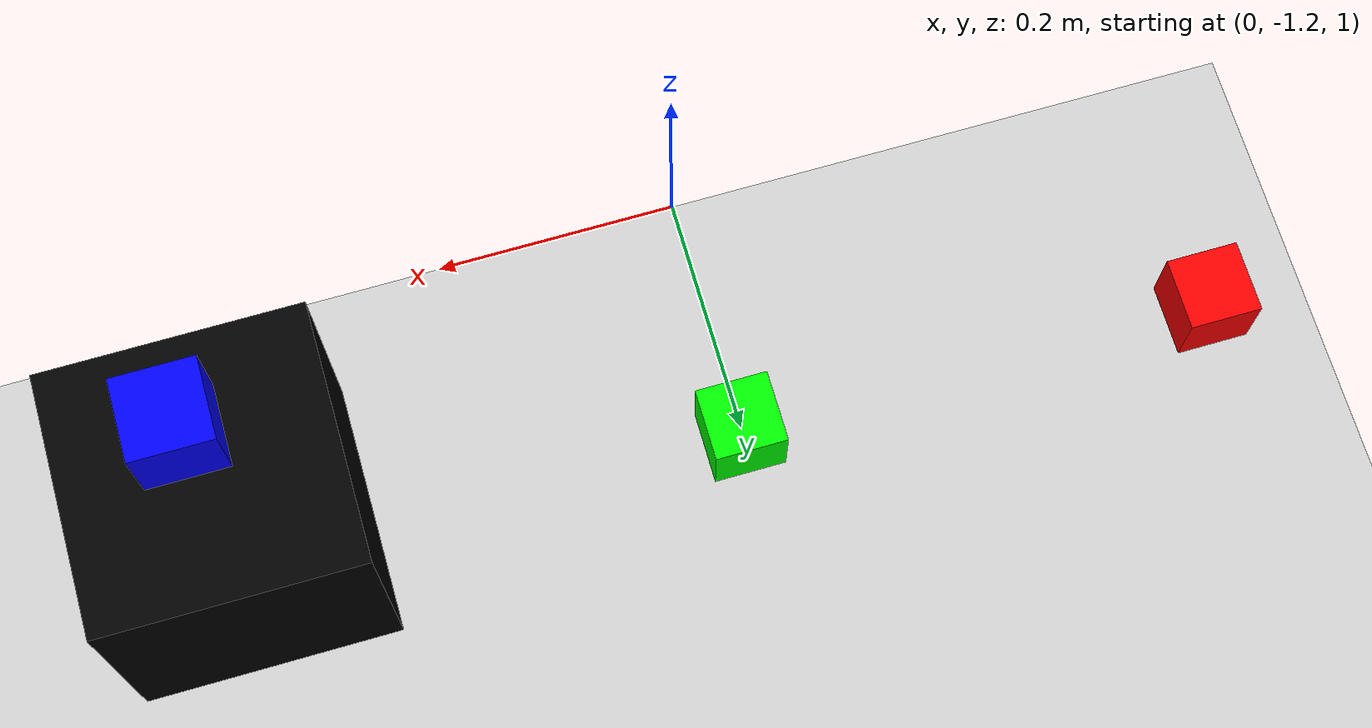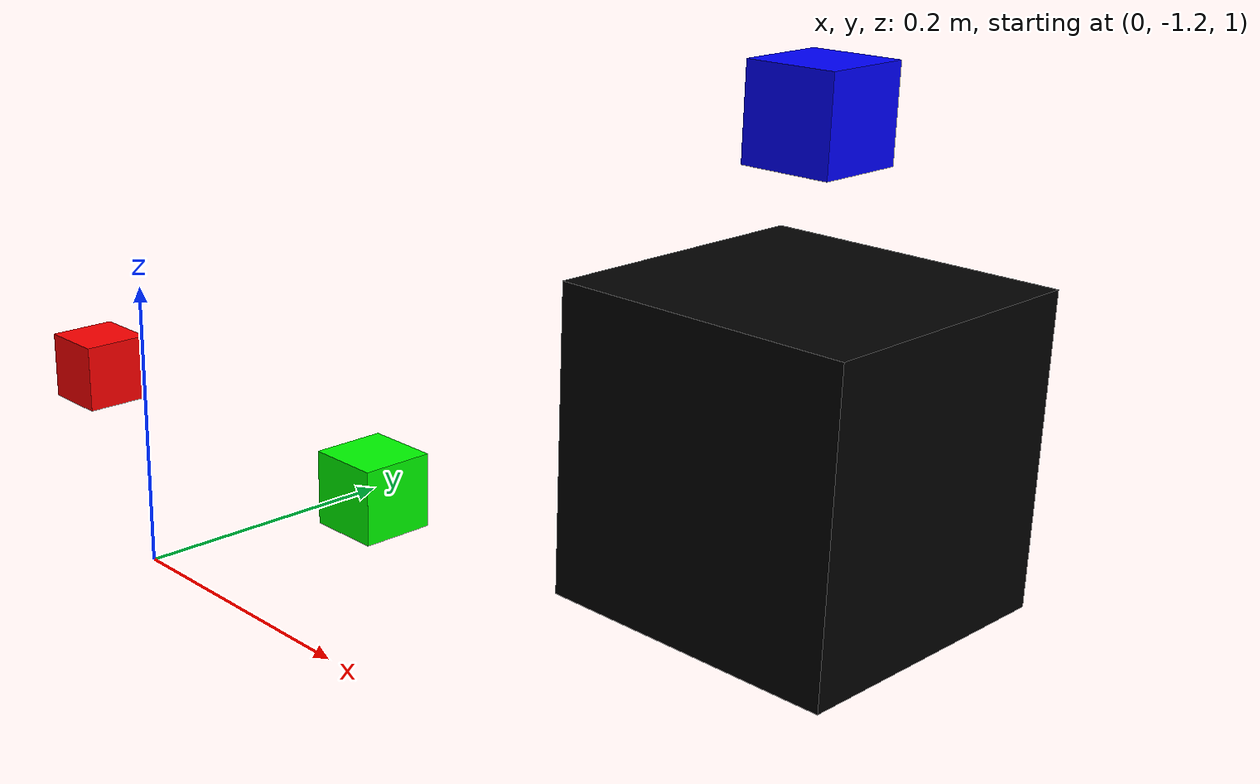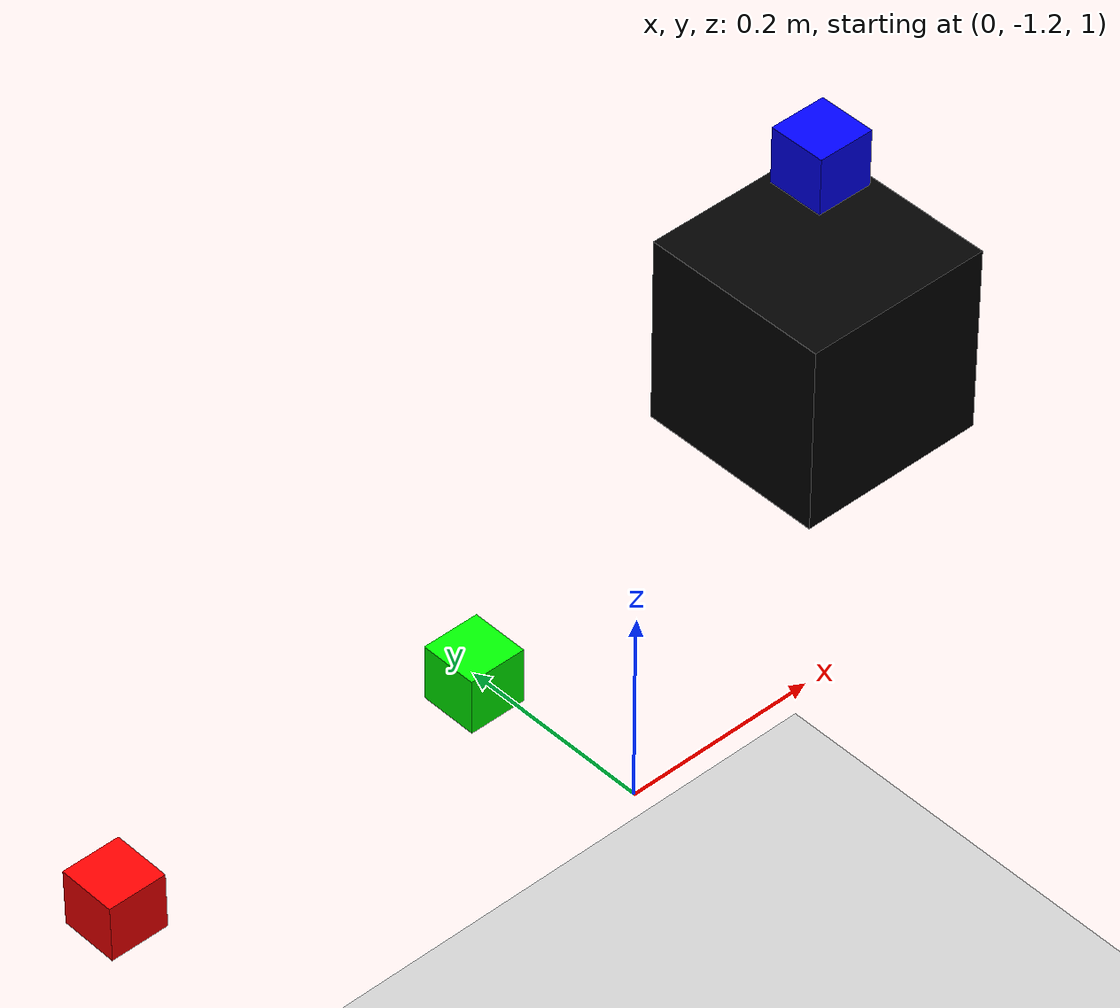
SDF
<sdf version="1.10">
 <world name="empty">
  <physics name="1ms" type="ignored">
   <max_step_size>0.001</max_step_size>
   <real_time_factor>1</real_time_factor>
   <real_time_update_rate>1000</real_time_update_rate>
  </physics>
  <plugin name="gz::sim::systems::Physics" filename="gz-sim-physics-system"/>
  <plugin name="gz::sim::systems::UserCommands" filename="gz-sim-user-commands-system"/>
  <plugin name="gz::sim::systems::SceneBroadcaster" filename="gz-sim-scene-broadcaster-system"/>
  <plugin name="gz::sim::systems::Contact" filename="gz-sim-contact-system"/>
  <plugin name="gz::sim::systems::Sensors" filename="gz-sim-sensors-system">
   <render_engine>ogre2</render_engine>
  </plugin>
  <gravity>0 0 -9.8000000000000007</gravity>
  <magnetic_field>5.5644999999999998e-06 2.2875799999999999e-05 -4.2388400000000002e-05</magnetic_field>
  <atmosphere type="adiabatic"/>
  <scene>
   <ambient>0.400000006 0.400000006 0.400000006 1</ambient>
   <background>0.699999988 0.699999988 0.699999988 1</background>
   <shadows>true</shadows>
  </scene>
  <model name="ground_plane">
   <static>true</static>
   <link name="link">
    <collision name="collision">
     <geometry><plane><normal>0 0 1</normal><size>100 100</size></plane></geometry>
    </collision>
    <visual name="visual">
     <geometry><plane><normal>0 0 1</normal><size>100 100</size></plane></geometry>
     <material>
      <ambient>0.800000012 0.800000012 0.800000012 1</ambient>
      <diffuse>0.800000012 0.800000012 0.800000012 1</diffuse>
      <specular>0.800000012 0.800000012 0.800000012 1</specular>
     </material>
    </visual>
    <inertial>
     <mass>1</mass>
     <inertia><ixx>1</ixx><ixy>0</ixy><ixz>0</ixz><iyy>1</iyy><iyz>0</iyz><izz>1</izz></inertia>
    </inertial>
   </link>
  </model>
  <model name="box">
   <pose>-0.4 -1.0 1.0 0 0 0</pose>
   <link name="box_link">
    <inertial>
     <inertia><ixx>0.00003</ixx><ixy>0</ixy><ixz>0</ixz><iyy>0.00003</iyy><iyz>0</iyz><izz>0.00003</izz></inertia>
     <mass>0.05</mass>
    </inertial>
    <collision name="box_collision">
     <geometry><box><size>0.06 0.06 0.06</size></box></geometry>
     <surface>
      <friction><ode><mu1>10.2</mu1><mu2>10.2</mu2></ode></friction>
      <contact><ode><kp>1000000.0</kp><kd>1.0</kd><max_vel>0.1</max_vel><min_depth>0.001</min_depth></ode></contact>
     </surface>
    </collision>
    <visual name="box_visual">
     <geometry><box><size>0.06 0.06 0.06</size></box></geometry>
     <material><ambient>1 0 0 1</ambient><diffuse>1 0 0 1</diffuse><specular>0.1 0.1 0.1 0.1</specular></material>
    </visual>
   </link>
   <static>false</static>
  </model>
  <model name="box_0">
   <pose>0.0 -1.0 1.0 0 0 0</pose>
   <link name="box_link">
    <inertial>
     <inertia><ixx>0.00003</ixx><ixy>0</ixy><ixz>0</ixz><iyy>0.00003</iyy><iyz>0</iyz><izz>0.00003</izz></inertia>
     <mass>0.05</mass>
    </inertial>
    <collision name="box_collision">
     <geometry><box><size>0.06 0.06 0.06</size></box></geometry>
     <surface>
      <friction><ode><mu1>10.2</mu1><mu2>10.2</mu2></ode></friction>
      <contact><ode><kp>1000000.0</kp><kd>1.0</kd><max_vel>0.1</max_vel><min_depth>0.001</min_depth></ode></contact>
     </surface>
    </collision>
    <visual name="box_visual">
     <geometry><box><size>0.06 0.06 0.06</size></box></geometry>
     <material><ambient>0 1 0 1</ambient><diffuse>0 1 0 1</diffuse><specular>0.1 0.1 0.1 0.1</specular></material>
    </visual>
   </link>
   <static>false</static>
  </model>
  <model name="box_1">
   <pose>0.4 -1.0 1.35 0 0 0</pose>
   <link name="box_link">
    <inertial>
     <inertia><ixx>0.00003</ixx><ixy>0</ixy><ixz>0</ixz><iyy>0.00003</iyy><iyz>0</iyz><izz>0.00003</izz></inertia>
     <mass>0.05</mass>
    </inertial>
    <collision name="box_collision">
     <geometry><box><size>0.06 0.06 0.06</size></box></geometry>
     <surface>
      <friction><ode><mu1>10.2</mu1><mu2>10.2</mu2></ode></friction>
      <contact><ode><kp>1000000.0</kp><kd>1.0</kd><max_vel>0.1</max_vel><min_depth>0.001</min_depth></ode></contact>
     </surface>
    </collision>
    <visual name="box_visual">
     <geometry><box><size>0.06 0.06 0.06</size></box></geometry>
     <material><ambient>0 0 1 1</ambient><diffuse>0 0 1 1</diffuse><specular>0.1 0.1 0.1 0.1</specular></material>
    </visual>
   </link>
   <static>false</static>
  </model>
  <model name="big_box">
   <pose>0.4 -1.0 1.15 0 0 0</pose>
   <link name="box_link">
    <inertial>
     <inertia><ixx>0.00003</ixx><ixy>0</ixy><ixz>0</ixz><iyy>0.00003</iyy><iyz>0</iyz><izz>0.00003</izz></inertia>
     <mass>5.0</mass>
    </inertial>
    <collision name="box_collision">
     <geometry><box><size>0.2 0.2 0.2</size></box></geometry>
     <surface>
      <friction><ode><mu1>10.2</mu1><mu2>10.2</mu2></ode></friction>
      <contact><ode><kp>1000000.0</kp><kd>1.0</kd><max_vel>0.1</max_vel><min_depth>0.001</min_depth></ode></contact>
     </surface>
    </collision>
    <visual name="box_visual">
     <geometry><box><size>0.2 0.2 0.2</size></box></geometry>
     <material><ambient>0 0 0 1</ambient><diffuse>0 0 0 1</diffuse><specular>0 0 0 1</specular></material>
    </visual>
   </link>
   <static>false</static>
  </model>
  <light name="sun" type="directional">
   <pose>0 0 10 0 0 0</pose>
   <intensity>1</intensity>
   <direction>-0.5 0.10000000000000001 -0.90000000000000002</direction>
   <diffuse>0.800000012 0.800000012 0.800000012 1</diffuse>
   <specular>0.200000003 0.200000003 0.200000003 1</specular>
   <attenuation>
    <range>1000</range>
    <linear>0.0099999997764825821</linear>
    <constant>0.89999997615814209</constant>
    <quadratic>0.0010000000474974513</quadratic>
   </attenuation>
   <spot><inner_angle>0</inner_angle><outer_angle>0</outer_angle><falloff>0</falloff></spot>
  </light>
 </world>
</sdf>
